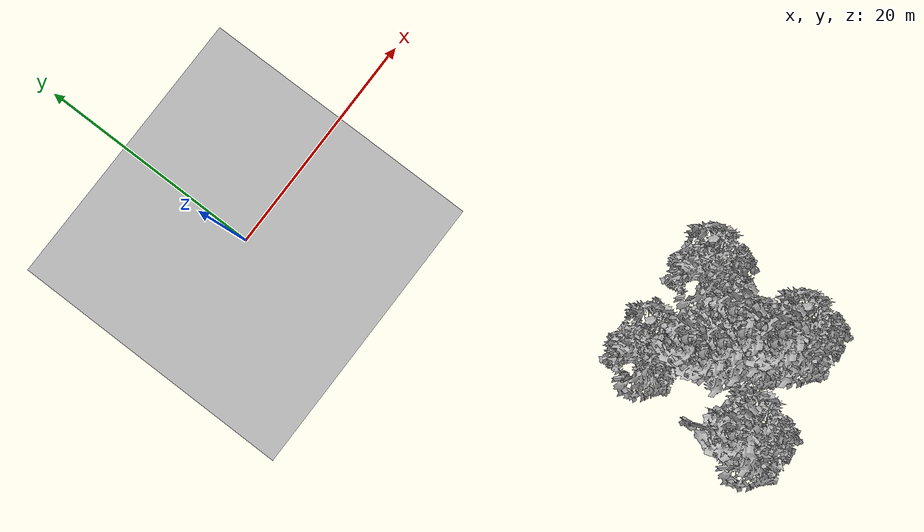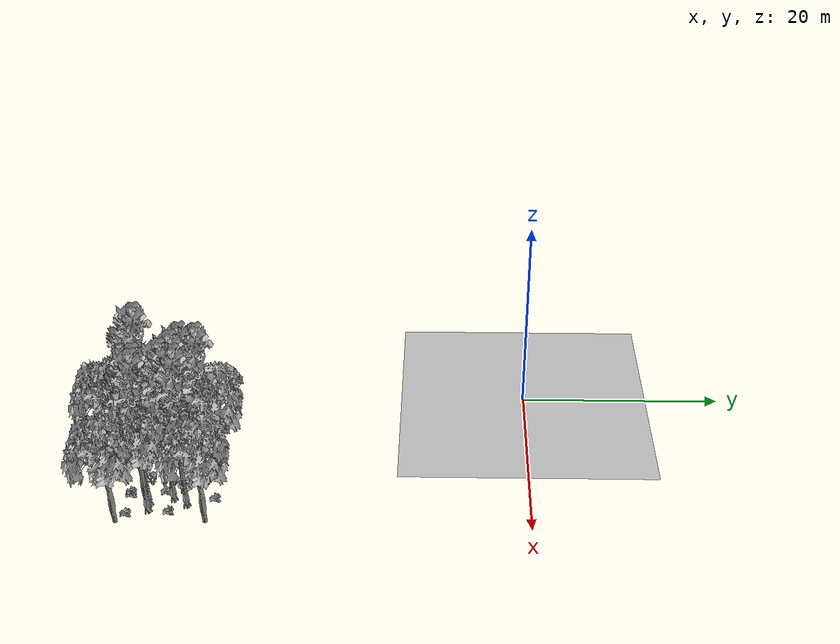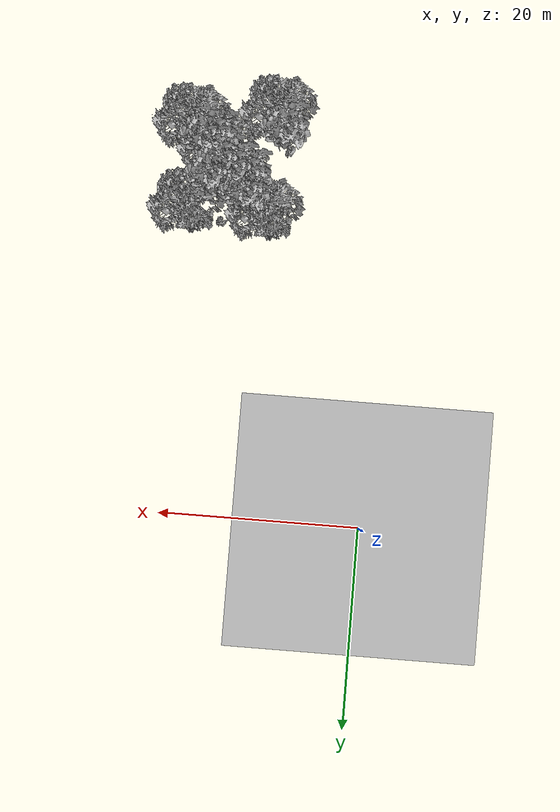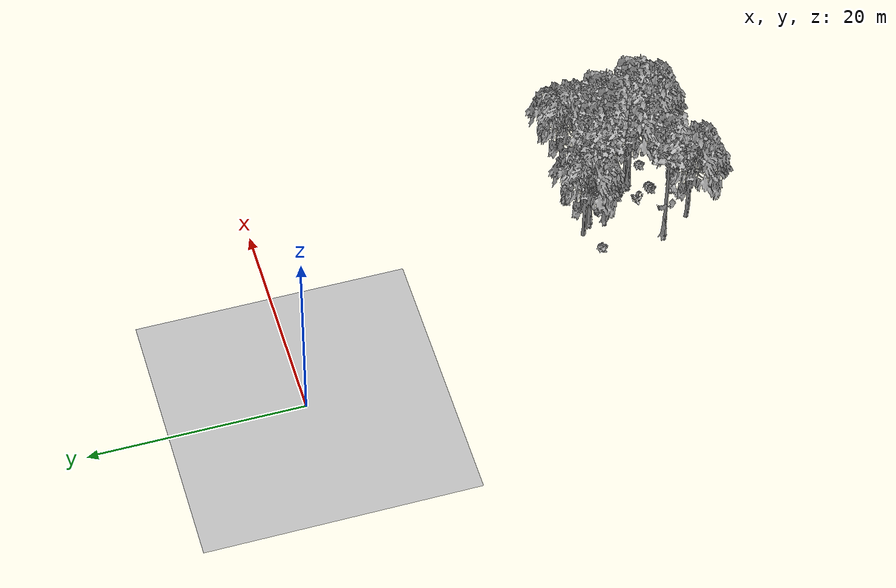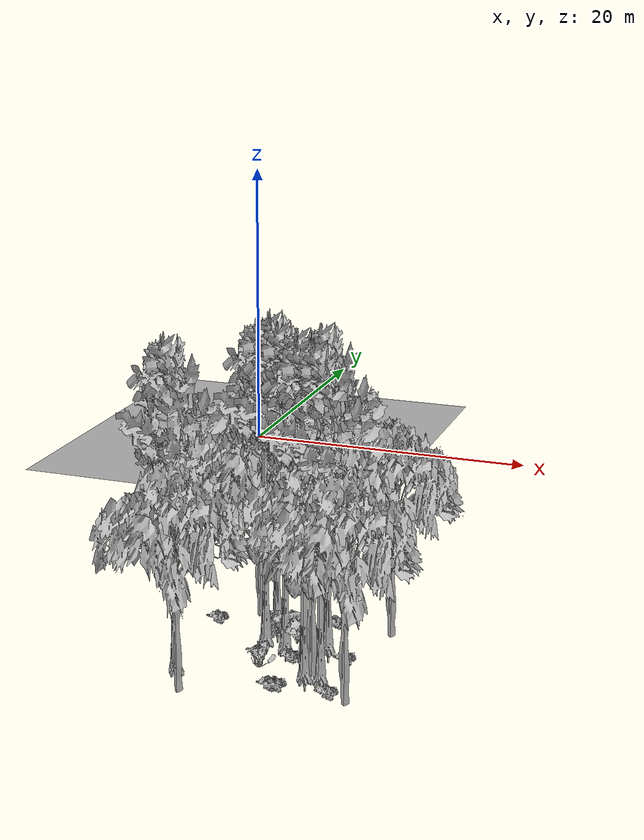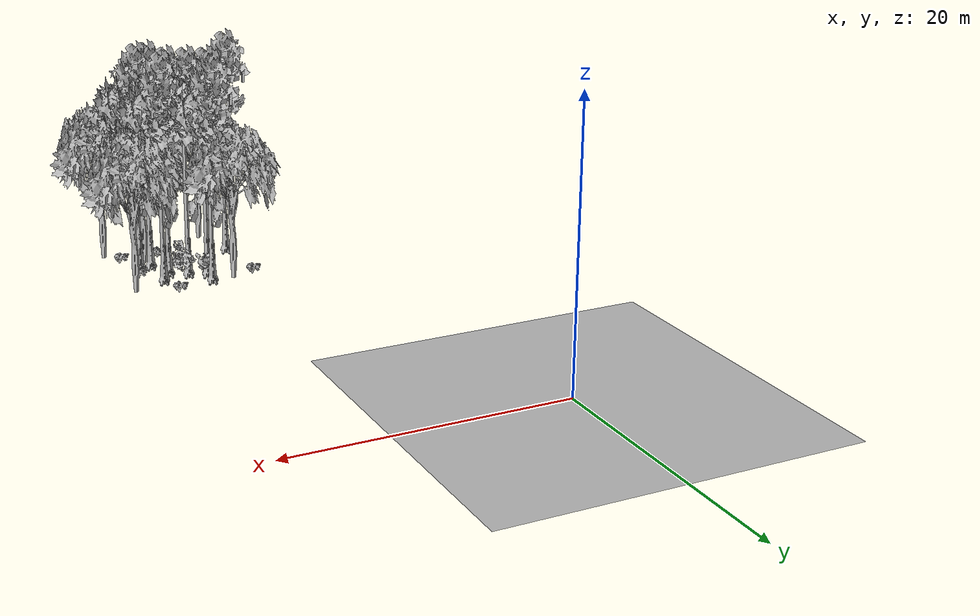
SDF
<sdf version="1.7">
 <world name="default">
  <model name="ground_plane">
   <static>1</static>
   <link name="link">
    <collision name="collision">
     <pose>-50 0 0 0 -0 0</pose>
     <geometry><plane><normal>0 0 1</normal><size>80 80</size></plane></geometry>
     <surface><contact><ode><min_depth>0.01</min_depth><max_vel>0</max_vel></ode></contact></surface>
    </collision>
    <visual name="grass">
     <cast_shadows>0</cast_shadows>
     <geometry>
      <mesh>
       <scale>0.46714285714285714 0.46714285714285714 0.1</scale>
       <uri>file://grass_plane/meshes/grass_plane.dae</uri>
      </mesh>
     </geometry>
    </visual>
   </link>
  </model>
  <model name="Tree 55">
   <static>1</static>
   <pose>11.675304233040045 -29.8565511561692 0 1.57079 -0 0</pose>
   <link name="link">
    <collision name="collision">
     <geometry><mesh><scale>3.5 5 3.5</scale><uri>model://tree_2/meshes/tree_2.obj</uri></mesh></geometry>
    </collision>
    <visual name="visual">
     <geometry><mesh><scale>3.5 5 3.5</scale><uri>model://tree_2/meshes/tree_2.obj</uri></mesh></geometry>
    </visual>
   </link>
  </model>
  <model name="Tree 92">
   <static>1</static>
   <pose>16.472394876405126 -32.22692062751971 0 1.57079 -0 0</pose>
   <link name="link">
    <collision name="collision">
     <geometry><mesh><scale>3.5 5 3.5</scale><uri>model://tree_9/meshes/tree_9.obj</uri></mesh></geometry>
    </collision>
    <visual name="visual">
     <geometry><mesh><scale>3.5 5 3.5</scale><uri>model://tree_9/meshes/tree_9.obj</uri></mesh></geometry>
    </visual>
   </link>
  </model>
  <model name="Tree 124">
   <static>1</static>
   <pose>9.847153636021822 -37.02450874609717 0 1.57079 -0 0</pose>
   <link name="link">
    <collision name="collision">
     <geometry><mesh><scale>3.5 5 3.5</scale><uri>model://tree_9/meshes/tree_9.obj</uri></mesh></geometry>
    </collision>
    <visual name="visual">
     <geometry><mesh><scale>3.5 5 3.5</scale><uri>model://tree_9/meshes/tree_9.obj</uri></mesh></geometry>
    </visual>
   </link>
  </model>
  <model name="Tree 183">
   <static>1</static>
   <pose>16.417254447366155 -35.742541830544454 0 1.57079 -0 0</pose>
   <link name="link">
    <collision name="collision">
     <geometry><mesh><scale>3.5 5 3.5</scale><uri>model://tree_9/meshes/tree_9.obj</uri></mesh></geometry>
    </collision>
    <visual name="visual">
     <geometry><mesh><scale>3.5 5 3.5</scale><uri>model://tree_9/meshes/tree_9.obj</uri></mesh></geometry>
    </visual>
   </link>
  </model>
  <model name="Tree 193">
   <static>1</static>
   <pose>14.31985589610224 -32.85760174040388 0 1.57079 -0 0</pose>
   <link name="link">
    <collision name="collision">
     <geometry><mesh><scale>3.5 5 3.5</scale><uri>model://tree_9/meshes/tree_9.obj</uri></mesh></geometry>
    </collision>
    <visual name="visual">
     <geometry><mesh><scale>3.5 5 3.5</scale><uri>model://tree_9/meshes/tree_9.obj</uri></mesh></geometry>
    </visual>
   </link>
  </model>
  <model name="Tree 216">
   <static>1</static>
   <pose>15.648850936419997 -33.57222464986111 0 1.57079 -0 0</pose>
   <link name="link">
    <collision name="collision">
     <geometry><mesh><scale>3.5 5 3.5</scale><uri>model://tree_9/meshes/tree_9.obj</uri></mesh></geometry>
    </collision>
    <visual name="visual">
     <geometry><mesh><scale>3.5 5 3.5</scale><uri>model://tree_9/meshes/tree_9.obj</uri></mesh></geometry>
    </visual>
   </link>
  </model>
  <model name="Tree 270">
   <static>1</static>
   <pose>19.21647451102394 -30.025046635040464 0 1.57079 -0 0</pose>
   <link name="link">
    <collision name="collision">
     <geometry><mesh><scale>3.5 5 3.5</scale><uri>model://tree_2/meshes/tree_2.obj</uri></mesh></geometry>
    </collision>
    <visual name="visual">
     <geometry><mesh><scale>3.5 5 3.5</scale><uri>model://tree_2/meshes/tree_2.obj</uri></mesh></geometry>
    </visual>
   </link>
  </model>
  <model name="Tree 276">
   <static>1</static>
   <pose>13.000574419282259 -32.305754142479834 0 1.57079 -0 0</pose>
   <link name="link">
    <collision name="collision">
     <geometry><mesh><scale>3.5 5 3.5</scale><uri>model://tree_9/meshes/tree_9.obj</uri></mesh></geometry>
    </collision>
    <visual name="visual">
     <geometry><mesh><scale>3.5 5 3.5</scale><uri>model://tree_9/meshes/tree_9.obj</uri></mesh></geometry>
    </visual>
   </link>
  </model>
  <model name="Tree 319">
   <static>1</static>
   <pose>19.340866686361387 -38.29154403853725 0 1.57079 -0 0</pose>
   <link name="link">
    <collision name="collision">
     <geometry><mesh><scale>3.5 5 3.5</scale><uri>model://tree_2/meshes/tree_2.obj</uri></mesh></geometry>
    </collision>
    <visual name="visual">
     <geometry><mesh><scale>3.5 5 3.5</scale><uri>model://tree_2/meshes/tree_2.obj</uri></mesh></geometry>
    </visual>
   </link>
  </model>
  <model name="Tree 375">
   <static>1</static>
   <pose>16.817154794510436 -35.85416226180533 0 1.57079 -0 0</pose>
   <link name="link">
    <collision name="collision">
     <geometry><mesh><scale>3.5 5 3.5</scale><uri>model://tree_2/meshes/tree_2.obj</uri></mesh></geometry>
    </collision>
    <visual name="visual">
     <geometry><mesh><scale>3.5 5 3.5</scale><uri>model://tree_2/meshes/tree_2.obj</uri></mesh></geometry>
    </visual>
   </link>
  </model>
  <model name="Tree 505">
   <static>1</static>
   <pose>17.269355417806317 -35.73219048377014 0 1.57079 -0 0</pose>
   <link name="link">
    <collision name="collision">
     <geometry><mesh><scale>3.5 5 3.5</scale><uri>model://tree_9/meshes/tree_9.obj</uri></mesh></geometry>
    </collision>
    <visual name="visual">
     <geometry><mesh><scale>3.5 5 3.5</scale><uri>model://tree_9/meshes/tree_9.obj</uri></mesh></geometry>
    </visual>
   </link>
  </model>
  <model name="Tree 631">
   <static>1</static>
   <pose>13.095642827385461 -30.837484161747923 0 1.57079 -0 0</pose>
   <link name="link">
    <collision name="collision">
     <geometry><mesh><scale>3.5 5 3.5</scale><uri>model://tree_9/meshes/tree_9.obj</uri></mesh></geometry>
    </collision>
    <visual name="visual">
     <geometry><mesh><scale>3.5 5 3.5</scale><uri>model://tree_9/meshes/tree_9.obj</uri></mesh></geometry>
    </visual>
   </link>
  </model>
  <model name="Tree 639">
   <static>1</static>
   <pose>11.107568516686818 -39.74286838800511 0 1.57079 -0 0</pose>
   <link name="link">
    <collision name="collision">
     <geometry><mesh><scale>3.5 5 3.5</scale><uri>model://tree_2/meshes/tree_2.obj</uri></mesh></geometry>
    </collision>
    <visual name="visual">
     <geometry><mesh><scale>3.5 5 3.5</scale><uri>model://tree_2/meshes/tree_2.obj</uri></mesh></geometry>
    </visual>
   </link>
  </model>
  <model name="Bush 156">
   <static>1</static>
   <pose>14.886381002719702 -32.63390720034607 0 1.57079 -0 0</pose>
   <link name="link">
    <collision name="collision">
     <geometry><mesh><scale>2 2 2</scale><uri>model://bush_1/meshes/bush_1.obj</uri></mesh></geometry>
     <surface><contact><collide_without_contact>false</collide_without_contact></contact></surface>
    </collision>
    <visual name="visual">
     <geometry><mesh><scale>2 2 2</scale><uri>model://bush_1/meshes/bush_1.obj</uri></mesh></geometry>
    </visual>
   </link>
  </model>
  <model name="Bush 171">
   <static>1</static>
   <pose>18.250009460058955 -37.56712106951959 0 1.57079 -0 0</pose>
   <link name="link">
    <collision name="collision">
     <geometry><mesh><scale>2 2 2</scale><uri>model://bush_2/meshes/bush_2.obj</uri></mesh></geometry>
     <surface><contact><collide_without_contact>false</collide_without_contact></contact></surface>
    </collision>
    <visual name="visual">
     <geometry><mesh><scale>2 2 2</scale><uri>model://bush_2/meshes/bush_2.obj</uri></mesh></geometry>
    </visual>
   </link>
  </model>
  <model name="Bush 245">
   <static>1</static>
   <pose>17.908251674345948 -33.65144416583472 0 1.57079 -0 0</pose>
   <link name="link">
    <collision name="collision">
     <geometry><mesh><scale>2 2 2</scale><uri>model://bush_2/meshes/bush_2.obj</uri></mesh></geometry>
     <surface><contact><collide_without_contact>false</collide_without_contact></contact></surface>
    </collision>
    <visual name="visual">
     <geometry><mesh><scale>2 2 2</scale><uri>model://bush_2/meshes/bush_2.obj</uri></mesh></geometry>
    </visual>
   </link>
  </model>
  <model name="Bush 363">
   <static>1</static>
   <pose>15.197028143056812 -37.66220775712824 0 1.57079 -0 0</pose>
   <link name="link">
    <collision name="collision">
     <geometry><mesh><scale>2 2 2</scale><uri>model://bush_2/meshes/bush_2.obj</uri></mesh></geometry>
     <surface><contact><collide_without_contact>false</collide_without_contact></contact></surface>
    </collision>
    <visual name="visual">
     <geometry><mesh><scale>2 2 2</scale><uri>model://bush_2/meshes/bush_2.obj</uri></mesh></geometry>
    </visual>
   </link>
  </model>
  <model name="Bush 445">
   <static>1</static>
   <pose>9.718433889673868 -31.07792176804154 0 1.57079 -0 0</pose>
   <link name="link">
    <collision name="collision">
     <geometry><mesh><scale>2 2 2</scale><uri>model://bush_2/meshes/bush_2.obj</uri></mesh></geometry>
     <surface><contact><collide_without_contact>false</collide_without_contact></contact></surface>
    </collision>
    <visual name="visual">
     <geometry><mesh><scale>2 2 2</scale><uri>model://bush_2/meshes/bush_2.obj</uri></mesh></geometry>
    </visual>
   </link>
  </model>
  <model name="Bush 483">
   <static>1</static>
   <pose>16.03803631265005 -29.571337864846868 0 1.57079 -0 0</pose>
   <link name="link">
    <collision name="collision">
     <geometry><mesh><scale>2 2 2</scale><uri>model://bush_2/meshes/bush_2.obj</uri></mesh></geometry>
     <surface><contact><collide_without_contact>false</collide_without_contact></contact></surface>
    </collision>
    <visual name="visual">
     <geometry><mesh><scale>2 2 2</scale><uri>model://bush_2/meshes/bush_2.obj</uri></mesh></geometry>
    </visual>
   </link>
  </model>
  <model name="Bush 486">
   <static>1</static>
   <pose>15.122537398216778 -34.32930659608001 0 1.57079 -0 0</pose>
   <link name="link">
    <collision name="collision">
     <geometry><mesh><scale>2 2 2</scale><uri>model://bush_2/meshes/bush_2.obj</uri></mesh></geometry>
     <surface><contact><collide_without_contact>false</collide_without_contact></contact></surface>
    </collision>
    <visual name="visual">
     <geometry><mesh><scale>2 2 2</scale><uri>model://bush_2/meshes/bush_2.obj</uri></mesh></geometry>
    </visual>
   </link>
  </model>
  <model name="Bush 515">
   <static>1</static>
   <pose>13.99474414465233 -35.88316130763594 0 1.57079 -0 0</pose>
   <link name="link">
    <collision name="collision">
     <geometry><mesh><scale>2 2 2</scale><uri>model://bush_4/meshes/bush_4.obj</uri></mesh></geometry>
     <surface><contact><collide_without_contact>false</collide_without_contact></contact></surface>
    </collision>
    <visual name="visual">
     <geometry><mesh><scale>2 2 2</scale><uri>model://bush_4/meshes/bush_4.obj</uri></mesh></geometry>
    </visual>
   </link>
  </model>
  <model name="Bush 586">
   <static>1</static>
   <pose>15.53063212317177 -37.5924261029202 0 1.57079 -0 0</pose>
   <link name="link">
    <collision name="collision">
     <geometry><mesh><scale>2 2 2</scale><uri>model://bush_2/meshes/bush_2.obj</uri></mesh></geometry>
     <surface><contact><collide_without_contact>false</collide_without_contact></contact></surface>
    </collision>
    <visual name="visual">
     <geometry><mesh><scale>2 2 2</scale><uri>model://bush_2/meshes/bush_2.obj</uri></mesh></geometry>
    </visual>
   </link>
  </model>
  <model name="Bush 617">
   <static>1</static>
   <pose>13.509319770939989 -31.797142197388535 0 1.57079 -0 0</pose>
   <link name="link">
    <collision name="collision">
     <geometry><mesh><scale>2 2 2</scale><uri>model://bush_0/meshes/bush_0.obj</uri></mesh></geometry>
     <surface><contact><collide_without_contact>false</collide_without_contact></contact></surface>
    </collision>
    <visual name="visual">
     <geometry><mesh><scale>2 2 2</scale><uri>model://bush_0/meshes/bush_0.obj</uri></mesh></geometry>
    </visual>
   </link>
  </model>
 </world>
</sdf>
